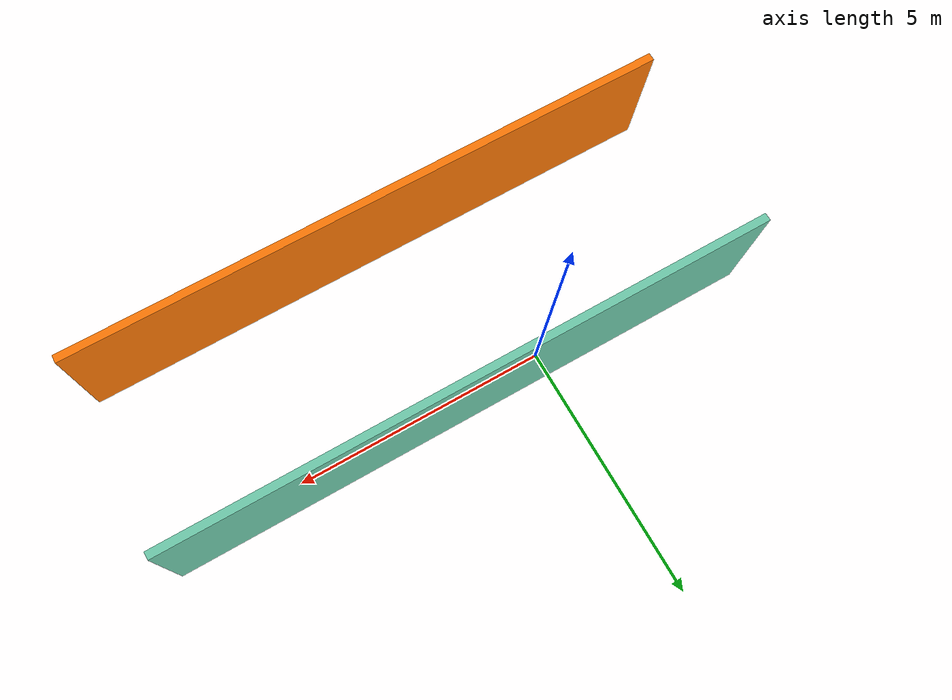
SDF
<?xml version='1.0'?>
<sdf version='1.7'>
  <model name='WallP'>
    <pose>1.715 -1.475 0 0 -0 0</pose>
    <link name='Wall_1'>
      <collision name='Wall_1_Collision'>
        <geometry>
          <box>
            <size>11.75 0.15 2.5</size>
          </box>
        </geometry>
        <pose>0 0 1.25 0 -0 0</pose>
      </collision>
      <visual name='Wall_1_Visual'>
        <pose>0 0 1.25 0 -0 0</pose>
        <geometry>
          <box>
            <size>11.75 0.15 2.5</size>
          </box>
        </geometry>
        <material>
          <script>
            <uri>file://media/materials/scripts/gazebo.material</uri>
            <name>Gazebo/Grey</name>
          </script>
          <ambient>0.435294 0.796078 0.67451 1</ambient>
        </material>
        <meta>
          <layer>0</layer>
        </meta>
      </visual>
      <pose>0.005 1.825 0 0 -0 0</pose>
    </link>
    <link name='Wall_3'>
      <collision name='Wall_3_Collision'>
        <geometry>
          <box>
            <size>11.75 0.15 2.5</size>
          </box>
        </geometry>
        <pose>0 0 1.25 0 -0 0</pose>
      </collision>
      <visual name='Wall_3_Visual'>
        <pose>0 0 1.25 0 -0 0</pose>
        <geometry>
          <box>
            <size>11.75 0.15 2.5</size>
          </box>
        </geometry>
        <material>
          <script>
            <uri>file://media/materials/scripts/gazebo.material</uri>
            <name>Gazebo/Grey</name>
          </script>
          <ambient>0.996078 0.47451 0.0196078 1</ambient>
        </material>
        <meta>
          <layer>0</layer>
        </meta>
      </visual>
      <pose>-0.005 -1.825 0 0 -0 0</pose>
    </link>
    <static>1</static>
  </model>
</sdf>
